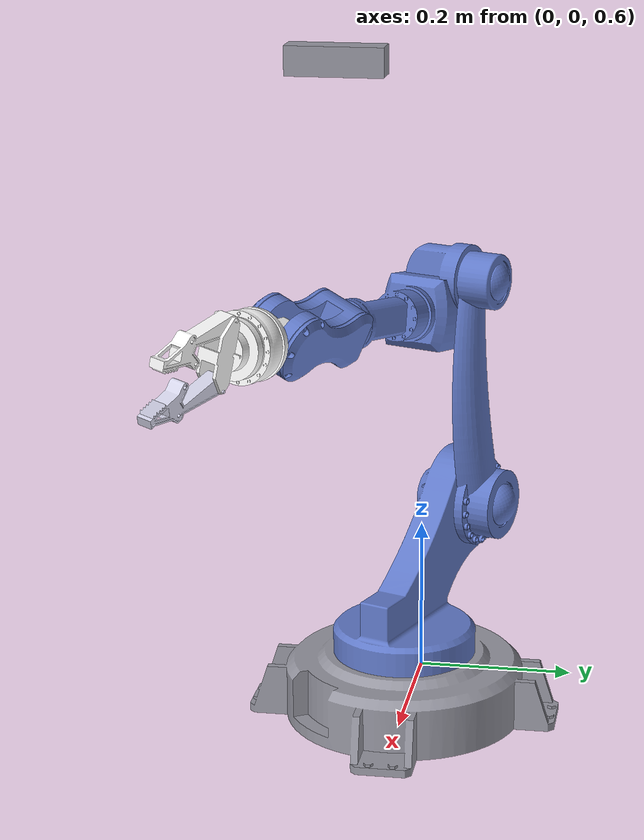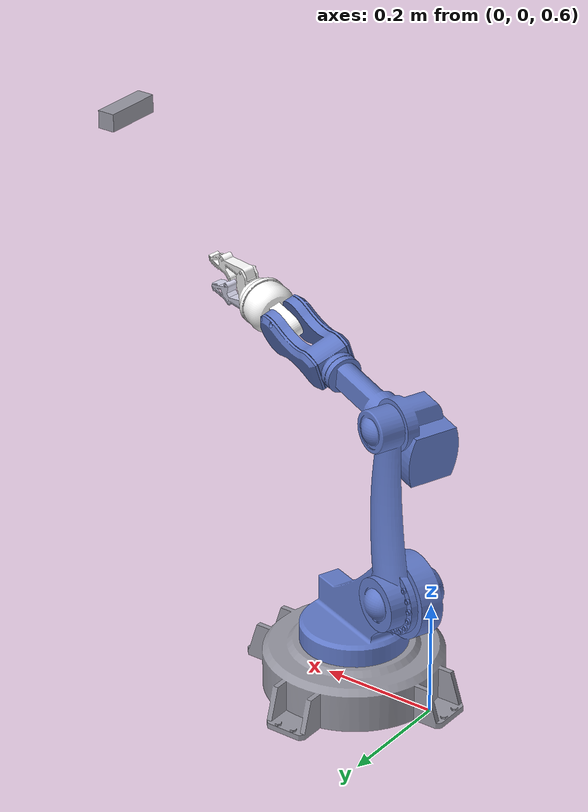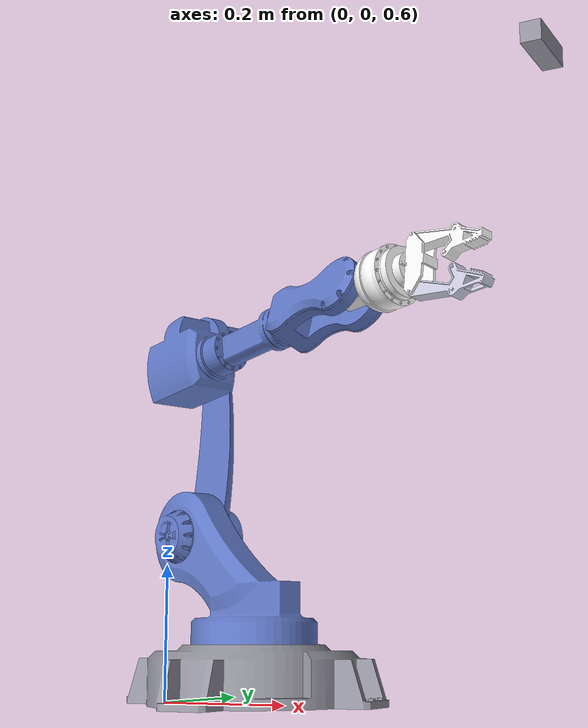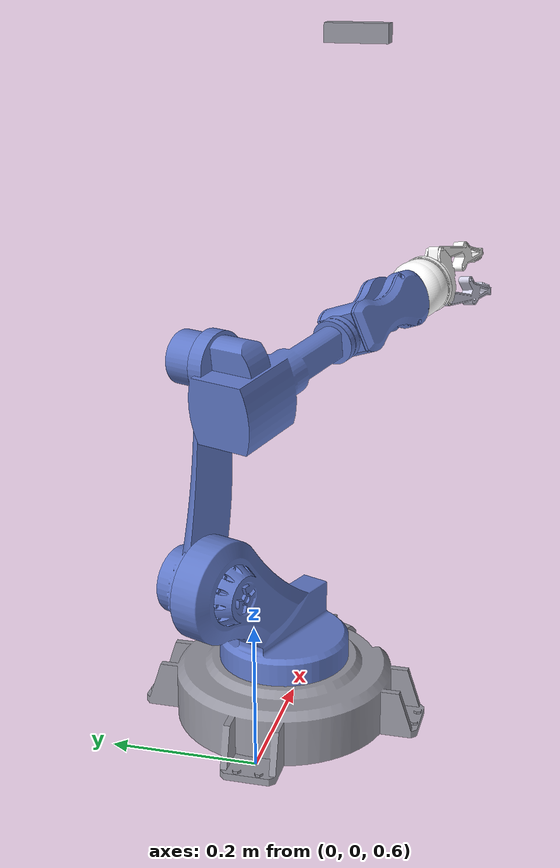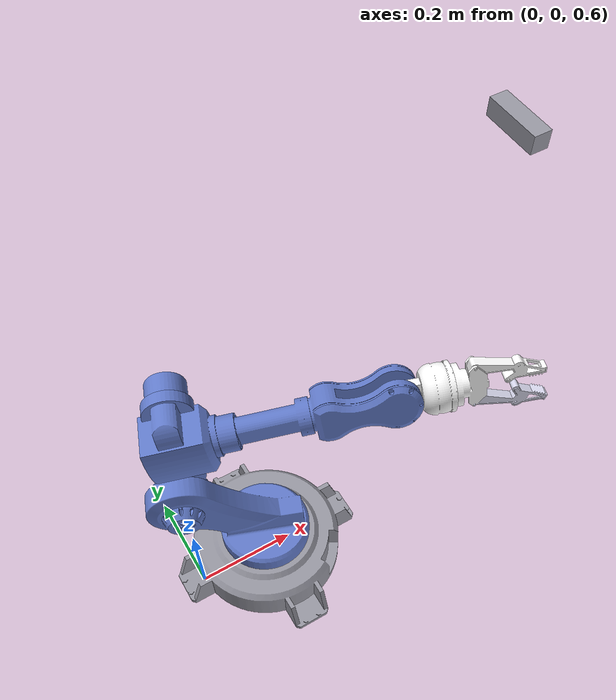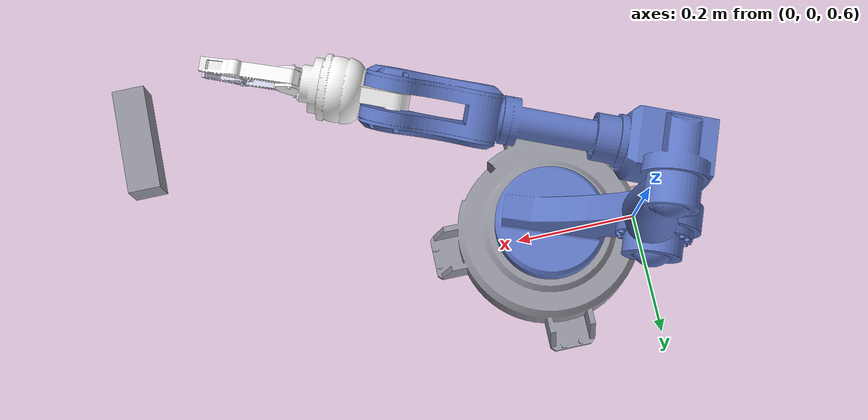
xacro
<?xml version="1.0" encoding="utf-8"?>
<robot name="6dof_arm" xmlns:xacro="http://www.ros.org/wiki/xacro">

  <!--  6DOF Robotic Arm — ROS2 XACRO                                   -->
  <!--  Kaynak: SolidWorks URDF Export → ROS2 migration                 -->
  <!--  Paket: arm_description                                           -->

  <!-- ==================== PARAMETRELER ==================== -->
  <!-- pi xacro built-in, yeniden tanımlamaya gerek yok -->

  <!-- Eklem limitleri (sim-only design limits) -->
  <xacro:property name="joint1_lower" value="-3.14"/>
  <xacro:property name="joint1_upper" value="3.14"/>
  <xacro:property name="joint1_effort" value="50"/>
  <xacro:property name="joint1_vel" value="1.0"/>

  <xacro:property name="joint2_lower" value="-2.86"/>
  <xacro:property name="joint2_upper" value="1.25"/>
  <xacro:property name="joint2_effort" value="30"/>
  <xacro:property name="joint2_vel" value="1.0"/>

  <xacro:property name="joint3_lower" value="-3.30"/>
  <xacro:property name="joint3_upper" value="0.94"/>
  <xacro:property name="joint3_effort" value="30"/>
  <xacro:property name="joint3_vel" value="1.0"/>

  <xacro:property name="joint4_lower" value="-3.14"/>
  <xacro:property name="joint4_upper" value="3.14"/>
  <xacro:property name="joint4_effort" value="20"/>
  <xacro:property name="joint4_vel" value="1.0"/>

  <xacro:property name="joint5_lower" value="-2.44"/>
  <xacro:property name="joint5_upper" value="2.33"/>
  <xacro:property name="joint5_effort" value="20"/>
  <xacro:property name="joint5_vel" value="1.0"/>

  <xacro:property name="joint6_lower" value="-3.14"/>
  <xacro:property name="joint6_upper" value="3.14"/>
  <xacro:property name="joint6_effort" value="10"/>
  <xacro:property name="joint6_vel" value="2.0"/>

  <xacro:property name="gripper_effort" value="10"/>
  <xacro:property name="gripper_vel" value="1.5"/>

  <!-- Malzeme renkleri -->
  <xacro:property name="color_base"    value="0.58824 0.58824 0.63137 1"/>
  <xacro:property name="color_arm"     value="0.38039 0.47843 0.78824 1"/>
  <xacro:property name="color_wrist"   value="1 1 1 1"/>
  <xacro:property name="color_gripper" value="0.83922 0.83922 0.92157 1"/>

  <!-- ==================== MATERYAL TANIMI ==================== -->
  <material name="arm_blue">
    <color rgba="${color_arm}"/>
  </material>
  <material name="arm_grey">
    <color rgba="${color_base}"/>
  </material>
  <material name="arm_white">
    <color rgba="${color_wrist}"/>
  </material>
  <material name="arm_light_grey">
    <color rgba="${color_gripper}"/>
  </material>

  <!--  LİNKLER                                                         -->

  <!-- WORLD ANCHOR — robotu Gazebo'da yer çekimine karşı sabitler.        -->
  <!-- base_link world z=0.6'da çakılı. world_joint yaw=+90° (sola) → robotun ön -->
  <!-- yüzü/parmakları work_table'a (world +x) bakar. 120°'den 90°'ye düşürüldü:  -->
  <!-- 120°'de kolun dik-aşağı bırakış bölgesi masanın küçük köşesine sıkışıyordu -->
  <!-- (red kutu erişilemez). 90° erişim bölgesini masayla örtüştürür (kullanıcı  -->
  <!-- 2026-06-05). Kamera WORLD'e sabit (aşağı), base dönse de work_table üstünde.-->
  <link name="world"/>
  <joint name="world_joint" type="fixed">
    <!-- 2026-06-24: x 0→0.15 — robot masası çalışma masasına yapıştırıldı.
         sorting.world robot_base_table da (0.15,0,0.3) olarak güncellendi. -->
    <origin xyz="0.15 0 0.6" rpy="0 0 1.5708"/>
    <parent link="world"/>
    <child link="base_link"/>
  </joint>

  <!-- BASE LINK -->
  <link name="base_link">
    <inertial>
      <origin xyz="0.0014257 0.0014257 0.038711" rpy="0 0 0"/>
      <mass value="5.7724"/>
      <inertia ixx="0.036499" ixy="0.00079967" ixz="-4.1268E-05"
               iyy="0.036499" iyz="-4.1268E-05" izz="0.066642"/>
    </inertial>
    <visual>
      <origin xyz="0 0 0" rpy="0 0 0"/>
      <geometry>
        <mesh filename="package://arm_description/meshes/base_link.STL"/>
      </geometry>
      <material name="arm_grey"/>
    </visual>
    <collision>
      <origin xyz="0 0 0" rpy="0 0 0"/>
      <geometry>
        <mesh filename="package://arm_description/meshes/base_link.STL"/>
      </geometry>
    </collision>
  </link>

  <!-- LINK 1 -->
  <link name="Link_1">
    <inertial>
      <origin xyz="0.017589 0.054358 0.082921" rpy="0 0 0"/>
      <mass value="2.3103"/>
      <inertia ixx="0.022615" ixy="-0.0035612" ixz="-0.0028223"
               iyy="0.013109" iyz="-0.0086397" izz="0.016236"/>
    </inertial>
    <visual>
      <origin xyz="0 0 0" rpy="0 0 0"/>
      <geometry>
        <mesh filename="package://arm_description/meshes/Link_1.STL"/>
      </geometry>
      <material name="arm_blue"/>
    </visual>
    <collision>
      <origin xyz="0 0 0" rpy="0 0 0"/>
      <geometry>
        <mesh filename="package://arm_description/meshes/Link_1.STL"/>
      </geometry>
    </collision>
  </link>

  <!-- LINK 2 -->
  <link name="Link_2">
    <inertial>
      <origin xyz="-0.012763 -0.11731 0.025739" rpy="0 0 0"/>
      <mass value="0.84163"/>
      <inertia ixx="0.012672" ixy="-0.00088413" ixz="2.7282E-05"
               iyy="0.00060406" iyz="7.4106E-05" izz="0.012983"/>
    </inertial>
    <visual>
      <origin xyz="0 0 0" rpy="0 0 0"/>
      <geometry>
        <mesh filename="package://arm_description/meshes/Link_2.STL"/>
      </geometry>
      <material name="arm_blue"/>
    </visual>
    <collision>
      <origin xyz="0 0 0" rpy="0 0 0"/>
      <geometry>
        <mesh filename="package://arm_description/meshes/Link_2.STL"/>
      </geometry>
    </collision>
  </link>

  <!-- LINK 3 -->
  <link name="Link_3">
    <inertial>
      <origin xyz="-0.039486 0.033519 0.086164" rpy="0 0 0"/>
      <mass value="1.2927"/>
      <inertia ixx="0.0017704" ixy="-0.00032159" ixz="9.8732E-05"
               iyy="0.0062554" iyz="-0.00011136" izz="0.0066493"/>
    </inertial>
    <visual>
      <origin xyz="0 0 0" rpy="0 0 0"/>
      <geometry>
        <mesh filename="package://arm_description/meshes/Link_3.STL"/>
      </geometry>
      <material name="arm_blue"/>
    </visual>
    <collision>
      <origin xyz="0 0 0" rpy="0 0 0"/>
      <geometry>
        <mesh filename="package://arm_description/meshes/Link_3.STL"/>
      </geometry>
    </collision>
  </link>

  <!-- LINK 4 -->
  <link name="Link_4">
    <inertial>
      <origin xyz="-7.3726E-06 3.7625E-07 0.074877" rpy="0 0 0"/>
      <mass value="0.61716"/>
      <inertia ixx="0.0020041" ixy="6.1519E-05" ixz="1.4069E-07"
               iyy="0.0021139" iyz="-1.7016E-09" izz="0.00057314"/>
    </inertial>
    <visual>
      <origin xyz="0 0 0" rpy="0 0 0"/>
      <geometry>
        <mesh filename="package://arm_description/meshes/Link_4.STL"/>
      </geometry>
      <material name="arm_blue"/>
    </visual>
    <collision>
      <origin xyz="0 0 0" rpy="0 0 0"/>
      <geometry>
        <mesh filename="package://arm_description/meshes/Link_4.STL"/>
      </geometry>
    </collision>
  </link>

  <!-- LINK 5 -->
  <link name="Link_5">
    <inertial>
      <origin xyz="-0.041944 0.04217 0.0125" rpy="0 0 0"/>
      <mass value="0.31757"/>
      <inertia ixx="0.00027445" ixy="5.2255E-05" ixz="-6.4375E-19"
               iyy="0.00027389" iyz="6.2003E-19" izz="0.00032932"/>
    </inertial>
    <visual>
      <origin xyz="0 0 0" rpy="0 0 0"/>
      <geometry>
        <mesh filename="package://arm_description/meshes/Link_5.STL"/>
      </geometry>
      <material name="arm_white"/>
    </visual>
    <collision>
      <origin xyz="0 0 0" rpy="0 0 0"/>
      <geometry>
        <mesh filename="package://arm_description/meshes/Link_5.STL"/>
      </geometry>
    </collision>
  </link>

  <!-- LINK 6 (Son eklem / bilek) -->
  <link name="Link_6">
    <inertial>
      <origin xyz="-5.0238E-15 -2.3948E-13 0.0062845" rpy="0 0 0"/>
      <mass value="0.076424"/>
      <inertia ixx="3.78E-05" ixy="-1.2436E-06" ixz="1.6941E-21"
               iyy="3.2271E-05" iyz="-3.5999E-21" izz="4.0169E-05"/>
    </inertial>
    <visual>
      <origin xyz="0 0 0" rpy="0 0 0"/>
      <geometry>
        <mesh filename="package://arm_description/meshes/Link_6.STL"/>
      </geometry>
      <material name="arm_white"/>
    </visual>
    <collision>
      <origin xyz="0 0 0" rpy="0 0 0"/>
      <geometry>
        <mesh filename="package://arm_description/meshes/Link_6.STL"/>
      </geometry>
    </collision>
  </link>

  <!-- GRİPPER LINK 1 -->
  <link name="Gripper_link1">
    <inertial>
      <origin xyz="-0.054649 -0.0056051 0.008" rpy="0 0 0"/>
      <mass value="0.038907"/>
      <inertia ixx="5.0839E-06" ixy="-7.6725E-06" ixz="2.8481E-20"
               iyy="4.5428E-05" iyz="9.3174E-21" izz="4.8631E-05"/>
    </inertial>
    <visual>
      <origin xyz="0 0 0" rpy="0 0 0"/>
      <geometry>
        <mesh filename="package://arm_description/meshes/Gripper_link1.STL"/>
      </geometry>
      <material name="arm_white"/>
    </visual>
    <collision>
      <origin xyz="0 0 0" rpy="0 0 0"/>
      <geometry>
        <mesh filename="package://arm_description/meshes/Gripper_link1.STL"/>
      </geometry>
    </collision>
  </link>

  <!-- GRİPPER LINK 2 -->
  <link name="Gripper_link2">
    <inertial>
      <origin xyz="-0.050182 -0.022352 0.008" rpy="0 0 0"/>
      <mass value="0.038907"/>
      <inertia ixx="8.4615E-06" ixy="-1.3554E-05" ixz="2.9964E-20"
               iyy="4.205E-05" iyz="1.1435E-20" izz="4.8631E-05"/>
    </inertial>
    <visual>
      <origin xyz="0 0 0" rpy="0 0 0"/>
      <geometry>
        <mesh filename="package://arm_description/meshes/Gripper_link2.STL"/>
      </geometry>
      <material name="arm_light_grey"/>
    </visual>
    <collision>
      <origin xyz="0 0 0" rpy="0 0 0"/>
      <geometry>
        <mesh filename="package://arm_description/meshes/Gripper_link2.STL"/>
      </geometry>
    </collision>
  </link>

  <!-- TOOL LINK — LEGACY, IK/TCP REFERANSI DEĞİLDİR.                    -->
  <!--  Gripper_link1'e (HAREKETLİ parmak) bağlı; parmak açılıp kapandıkça -->
  <!--  yeri değişir → IK'de kullanılamaz. Yalnızca eski tf2_echo workspace -->
  <!--  kalibrasyonundan kalma. Gerçek sabit TCP = grasp_link (Link_6'nın   -->
  <!--  child'ı, aşağıda). IK tip = Link_6 (flanş).                         -->
  <link name="tool_link"/>

  <!--  EKLEMLERi                                                       -->

  <joint name="joint_1" type="revolute">
    <origin xyz="0 0 0.084" rpy="0 0 0"/>
    <parent link="base_link"/>
    <child link="Link_1"/>
    <axis xyz="0 0 1"/>
    <limit lower="${joint1_lower}" upper="${joint1_upper}"
           effort="${joint1_effort}" velocity="${joint1_vel}"/>
    <dynamics damping="0.5" friction="0.1"/>
  </joint>

  <joint name="joint_2" type="revolute">
    <origin xyz="0.11106 0.11837 0.16" rpy="-1.5708 0 1.2093"/>
    <parent link="Link_1"/>
    <child link="Link_2"/>
    <axis xyz="0 0 -1"/>
    <limit lower="${joint2_lower}" upper="${joint2_upper}"
           effort="${joint2_effort}" velocity="${joint2_vel}"/>
    <dynamics damping="0.5" friction="0.1"/>
  </joint>

  <joint name="joint_3" type="revolute">
    <origin xyz="-0.019287 -0.29938 0.0020019" rpy="0 0 0"/>
    <parent link="Link_2"/>
    <child link="Link_3"/>
    <axis xyz="0 0 -1"/>
    <limit lower="${joint3_lower}" upper="${joint3_upper}"
           effort="${joint3_effort}" velocity="${joint3_vel}"/>
    <dynamics damping="0.5" friction="0.1"/>
  </joint>

  <joint name="joint_4" type="revolute">
    <origin xyz="-0.22999 0.014126 0.088023" rpy="1.5708 1.5199 -1.4356"/>
    <parent link="Link_3"/>
    <child link="Link_4"/>
    <axis xyz="0 0 -1"/>
    <limit lower="${joint4_lower}" upper="${joint4_upper}"
           effort="${joint4_effort}" velocity="${joint4_vel}"/>
    <dynamics damping="0.3" friction="0.1"/>
  </joint>

  <joint name="joint_5" type="revolute">
    <origin xyz="-0.011421 0.0051115 0.133" rpy="1.5707 0.74125 1.1495"/>
    <parent link="Link_4"/>
    <child link="Link_5"/>
    <axis xyz="0 0 1"/>
    <limit lower="${joint5_lower}" upper="${joint5_upper}"
           effort="${joint5_effort}" velocity="${joint5_vel}"/>
    <dynamics damping="0.3" friction="0.1"/>
  </joint>

  <joint name="joint_6" type="revolute">
    <origin xyz="-0.073341 0.073736 0.0125" rpy="-1.5708 -1.1641 0.78271"/>
    <parent link="Link_5"/>
    <child link="Link_6"/>
    <axis xyz="0 0 1"/>
    <limit lower="${joint6_lower}" upper="${joint6_upper}"
           effort="${joint6_effort}" velocity="${joint6_vel}"/>
    <dynamics damping="0.1" friction="0.05"/>
  </joint>

  <!-- gripper_joint1: acik=-0.5736 rad, kapali=0.100 rad -->
  <joint name="gripper_joint1" type="revolute">
    <origin xyz="0.016384 0.038223 0.022892" rpy="-1.5708 1.0809 1.3594"/>
    <parent link="Link_6"/>
    <child link="Gripper_link1"/>
    <axis xyz="0 0 -1"/>
    <limit lower="-0.5736" upper="0.100"
           effort="${gripper_effort}" velocity="${gripper_vel}"/>
    <dynamics damping="0.1" friction="0.05"/>
  </joint>

  <joint name="gripper_joint2" type="revolute">
    <origin xyz="-0.00074056 -0.04158 0.022892" rpy="-1.5708 1.0809 1.3594"/>
    <parent link="Link_6"/>
    <child link="Gripper_link2"/>
    <axis xyz="0 0 -1"/>
    <limit lower="-0.200" upper="0.4736"
           effort="${gripper_effort}" velocity="${gripper_vel}"/>
    <dynamics damping="0.1" friction="0.05"/>
  </joint>

  <!-- Tool link — Gripper_link1'in ucuna sabit bağlı -->
  <joint name="tool_joint" type="fixed">
    <origin xyz="-0.09 0 0" rpy="0 0 0"/>
    <parent link="Gripper_link1"/>
    <child link="tool_link"/>
  </joint>

  <!--  GRASP / TCP FRAME (2026-05-30)                                  -->
  <!--  Sabit referans TCP — Link_6'nın child'ı, gripper hareketinden   -->
  <!--  BAĞIMSIZ (tool_link hareketli parmağa bağlı olduğu için IK'de    -->
  <!--  kullanılamıyor). Origin = gripper@0'da dondurulmuş tool_link     -->
  <!--  pozu (scratch/compute_tcp.py). FK/IK/DL-IK hâlâ Link_6'da çalışır;-->
  <!--  pick katmanı hedef pozu Link_6'ya bu offset ile dönüştürür.       -->
  <link name="grasp_link"/>
  <joint name="grasp_joint" type="fixed">
    <origin xyz="0.0075 -0.0032 0.1023" rpy="-1.5708 1.0809 1.3594"/>
    <parent link="Link_6"/>
    <child link="grasp_link"/>
  </joint>

  <!--  FAZ 4 — SABİT RGB-D KAMERA (eye-to-hand, tepeden)               -->
  <!--  Kamera WORLD'e sabit (base'e değil): world (0.6,0,1.5)'ten        -->
  <!--  work_table merkezine (x≈0.6) tepeden bakar; camera_stand kol      -->
  <!--  ucuyla hizalı. Base yaw +90° dönse de kamera yerinde kalır        -->
  <!--  (sahne yeniden tasarımı + base rotasyonu 2026-06-05).             -->
  <!--  çalışma tezgâhına (-Z) tepeden bakar. camera_link +X = optik     -->
  <!--  eksen (aşağı). TF'yi robot_state_publisher otomatik yayınlar     -->
  <!--  (tek seferlik kalibrasyon = bu fixed joint).                     -->
  <!--  camera_optical_frame = REP-103 (z-ileri, x-sağ, y-aşağı);        -->
  <!--  arm_perception detection/point-cloud projeksiyonu BUNU kullanır. -->
  <link name="camera_link">
    <inertial>
      <mass value="0.05"/>
      <inertia ixx="1e-5" ixy="0" ixz="0" iyy="1e-5" iyz="0" izz="1e-5"/>
    </inertial>
    <visual>
      <origin xyz="0 0 0" rpy="0 0 0"/>
      <geometry><box size="0.03 0.10 0.03"/></geometry>
      <material name="arm_grey"/>
    </visual>
  </link>
  <joint name="camera_mount_joint" type="fixed">
    <origin xyz="0.6 0.0 1.5" rpy="0 1.5708 0"/>
    <parent link="world"/>
    <child link="camera_link"/>
  </joint>

  <link name="camera_optical_frame"/>
  <joint name="camera_optical_joint" type="fixed">
    <origin xyz="0 0 0" rpy="-1.5708 0 -1.5708"/>
    <parent link="camera_link"/>
    <child link="camera_optical_frame"/>
  </joint>

  <!--  ROS2 CONTROL — Gazebo Hardware Interface                        -->
  <ros2_control name="6dof_arm_system" type="system">
    <hardware>
      <plugin>gz_ros2_control/GazeboSimSystem</plugin>
    </hardware>

    <joint name="joint_1">
      <command_interface name="position">
        <param name="min">${joint1_lower}</param>
        <param name="max">${joint1_upper}</param>
      </command_interface>
      <state_interface name="position"/>
      <state_interface name="velocity"/>
      <state_interface name="effort"/>
    </joint>

    <joint name="joint_2">
      <command_interface name="position">
        <param name="min">${joint2_lower}</param>
        <param name="max">${joint2_upper}</param>
      </command_interface>
      <state_interface name="position"/>
      <state_interface name="velocity"/>
      <state_interface name="effort"/>
    </joint>

    <joint name="joint_3">
      <command_interface name="position">
        <param name="min">${joint3_lower}</param>
        <param name="max">${joint3_upper}</param>
      </command_interface>
      <state_interface name="position"/>
      <state_interface name="velocity"/>
      <state_interface name="effort"/>
    </joint>

    <joint name="joint_4">
      <command_interface name="position">
        <param name="min">${joint4_lower}</param>
        <param name="max">${joint4_upper}</param>
      </command_interface>
      <state_interface name="position"/>
      <state_interface name="velocity"/>
      <state_interface name="effort"/>
    </joint>

    <joint name="joint_5">
      <command_interface name="position">
        <param name="min">${joint5_lower}</param>
        <param name="max">${joint5_upper}</param>
      </command_interface>
      <state_interface name="position"/>
      <state_interface name="velocity"/>
      <state_interface name="effort"/>
    </joint>

    <joint name="joint_6">
      <command_interface name="position">
        <param name="min">${joint6_lower}</param>
        <param name="max">${joint6_upper}</param>
      </command_interface>
      <state_interface name="position"/>
      <state_interface name="velocity"/>
      <state_interface name="effort"/>
    </joint>

    <joint name="gripper_joint1">
      <command_interface name="position">
        <param name="min">-0.5736</param>
        <param name="max">0.100</param>
      </command_interface>
      <state_interface name="position"/>
      <state_interface name="velocity"/>
    </joint>

    <joint name="gripper_joint2">
      <command_interface name="position">
        <param name="min">-0.200</param>
        <param name="max">0.4736</param>
      </command_interface>
      <state_interface name="position"/>
      <state_interface name="velocity"/>
    </joint>
  </ros2_control>

  <!--  GAZEBO PROPERTIES                                               -->

  <gazebo reference="base_link">
    <material>Gazebo/Grey</material>
    <mu1>0.9</mu1>
    <mu2>0.9</mu2>
  </gazebo>

  <gazebo reference="Link_1">
    <material>Gazebo/Blue</material>
    <mu1>0.5</mu1>
    <mu2>0.5</mu2>
  </gazebo>

  <gazebo reference="Link_2">
    <material>Gazebo/Blue</material>
  </gazebo>

  <gazebo reference="Link_3">
    <material>Gazebo/Blue</material>
  </gazebo>

  <gazebo reference="Link_4">
    <material>Gazebo/Blue</material>
  </gazebo>

  <gazebo reference="Link_5">
    <material>Gazebo/White</material>
  </gazebo>

  <gazebo reference="Link_6">
    <material>Gazebo/White</material>
  </gazebo>

  <gazebo reference="Gripper_link1">
    <material>Gazebo/White</material>
    <mu1>1.5</mu1>
    <mu2>1.5</mu2>
    <kp>1000000.0</kp>
    <kd>1.0</kd>
  </gazebo>

  <gazebo reference="Gripper_link2">
    <material>Gazebo/Grey</material>
    <mu1>1.5</mu1>
    <mu2>1.5</mu2>
    <kp>1000000.0</kp>
    <kd>1.0</kd>
  </gazebo>

  <!--  FAZ 4 — gz RGB-D SENSÖR (rgbd_camera)                           -->
  <!--    /camera/image, /camera/depth_image, /camera/points,           -->
  <!--    /camera/camera_info  (gz_bridge.yaml ile köprülenir)          -->
  <!--  gz_frame_id = camera_optical_frame → mesaj header'ları REP-103.  -->
  <gazebo reference="camera_link">
    <sensor name="rgbd_camera" type="rgbd_camera">
      <always_on>1</always_on>
      <!-- 30 -> 10 Hz (2026-06-15): RGB-D (rgb+depth+points) ogre2 render is the
           single biggest CPU cost under load; perception runs fine at 10 Hz and
           this frees the sim to keep RTF up. -->
      <update_rate>10</update_rate>
      <visualize>true</visualize>
      <topic>camera</topic>
      <gz_frame_id>camera_optical_frame</gz_frame_id>
      <camera>
        <horizontal_fov>1.047</horizontal_fov>
        <image>
          <width>640</width>
          <height>480</height>
          <format>R8G8B8</format>
        </image>
        <clip>
          <near>0.1</near>
          <far>5.0</far>
        </clip>
        <depth_camera>
          <clip>
            <near>0.1</near>
            <far>5.0</far>
          </clip>
        </depth_camera>
      </camera>
    </sensor>
  </gazebo>

  <!-- gz_ros2_control plugin -->
  <gazebo>
    <plugin filename="gz_ros2_control-system"
            name="gz_ros2_control::GazeboSimROS2ControlPlugin">
      <parameters>$(find arm_description)/config/ros2_controllers.yaml</parameters>
    </plugin>
  </gazebo>

</robot>
